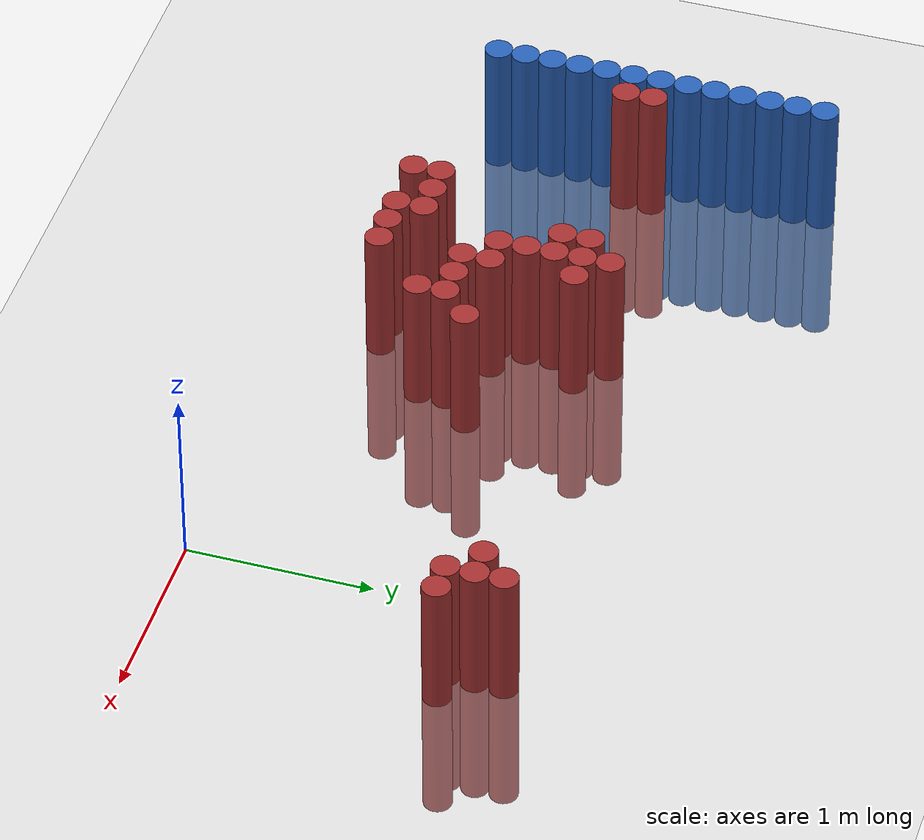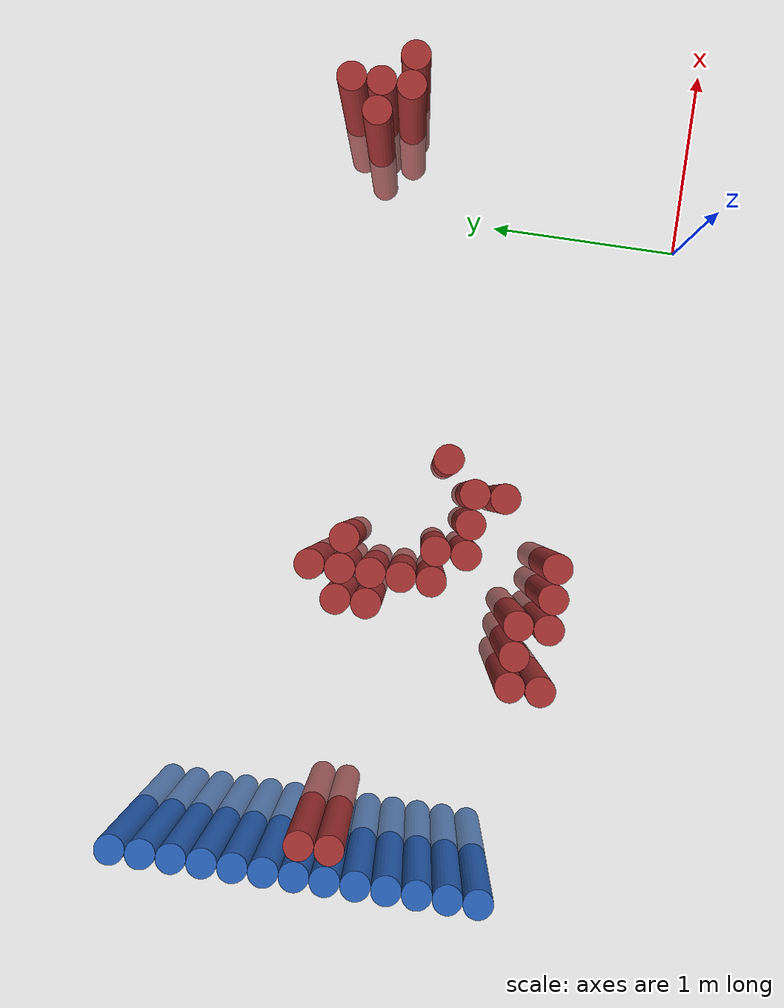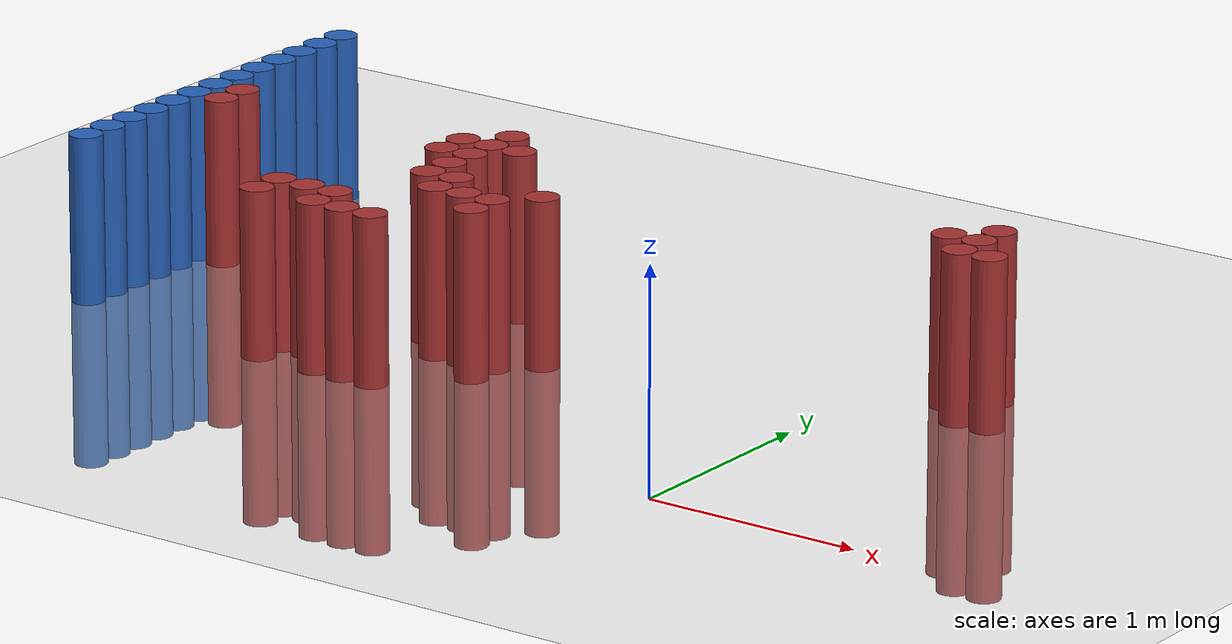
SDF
<sdf version="1.6">
 <world name="default">
  <model name="ground_plane">
   <static>1</static>
   <link name="link">
    <collision name="collision">
     <geometry><plane><normal>0 0 1</normal><size>100 100</size></plane></geometry>
     <surface><friction><ode><mu>100</mu><mu2>50</mu2></ode></friction></surface>
    </collision>
    <visual name="visual">
     <cast_shadows>0</cast_shadows>
     <geometry><plane><normal>0 0 1</normal><size>100 100</size></plane></geometry>
     <material>
      <script><uri>file://media/materials/scripts/gazebo.material</uri><name>Gazebo/Grey</name></script>
     </material>
    </visual>
   </link>
  </model>
  <model name="unit_cylinder_123">
   <static>1</static>
   <pose>-3.425000 0.625000 0.000000 0.000000 0.000000 0.000000</pose>
   <link name="link">
    <inertial>
     <mass>1</mass>
     <inertia><ixx>0.145833</ixx><ixy>0</ixy><ixz>0</ixz><iyy>0.145833</iyy><iyz>0</iyz><izz>0.125</izz></inertia>
    </inertial>
    <collision name="collision">
     <geometry><cylinder><radius>0.075000</radius><length>1.5</length></cylinder></geometry>
    </collision>
    <visual name="visual">
     <geometry><cylinder><radius>0.075000</radius><length>1.5</length></cylinder></geometry>
     <material>
      <ambient>0.152000 0.379000 0.720000 1</ambient>
      <diffuse>0.152000 0.379000 0.720000 1</diffuse>
     </material>
     <material>
      <script><name>Gazebo/Grey</name><uri>file://media/materials/scripts/gazebo.material</uri></script>
     </material>
    </visual>
   </link>
  </model>
  <model name="unit_cylinder_125">
   <static>1</static>
   <pose>-3.425000 0.775000 0.000000 0.000000 0.000000 0.000000</pose>
   <link name="link">
    <inertial>
     <mass>1</mass>
     <inertia><ixx>0.145833</ixx><ixy>0</ixy><ixz>0</ixz><iyy>0.145833</iyy><iyz>0</iyz><izz>0.125</izz></inertia>
    </inertial>
    <collision name="collision">
     <geometry><cylinder><radius>0.075000</radius><length>1.5</length></cylinder></geometry>
    </collision>
    <visual name="visual">
     <geometry><cylinder><radius>0.075000</radius><length>1.5</length></cylinder></geometry>
     <material>
      <ambient>0.152000 0.379000 0.720000 1</ambient>
      <diffuse>0.152000 0.379000 0.720000 1</diffuse>
     </material>
     <material>
      <script><name>Gazebo/Grey</name><uri>file://media/materials/scripts/gazebo.material</uri></script>
     </material>
    </visual>
   </link>
  </model>
  <model name="unit_cylinder_127">
   <static>1</static>
   <pose>-3.425000 0.925000 0.000000 0.000000 0.000000 0.000000</pose>
   <link name="link">
    <inertial>
     <mass>1</mass>
     <inertia><ixx>0.145833</ixx><ixy>0</ixy><ixz>0</ixz><iyy>0.145833</iyy><iyz>0</iyz><izz>0.125</izz></inertia>
    </inertial>
    <collision name="collision">
     <geometry><cylinder><radius>0.075000</radius><length>1.5</length></cylinder></geometry>
    </collision>
    <visual name="visual">
     <geometry><cylinder><radius>0.075000</radius><length>1.5</length></cylinder></geometry>
     <material>
      <ambient>0.152000 0.379000 0.720000 1</ambient>
      <diffuse>0.152000 0.379000 0.720000 1</diffuse>
     </material>
     <material>
      <script><name>Gazebo/Grey</name><uri>file://media/materials/scripts/gazebo.material</uri></script>
     </material>
    </visual>
   </link>
  </model>
  <model name="unit_cylinder_129">
   <static>1</static>
   <pose>-3.425000 1.075000 0.000000 0.000000 0.000000 0.000000</pose>
   <link name="link">
    <inertial>
     <mass>1</mass>
     <inertia><ixx>0.145833</ixx><ixy>0</ixy><ixz>0</ixz><iyy>0.145833</iyy><iyz>0</iyz><izz>0.125</izz></inertia>
    </inertial>
    <collision name="collision">
     <geometry><cylinder><radius>0.075000</radius><length>1.5</length></cylinder></geometry>
    </collision>
    <visual name="visual">
     <geometry><cylinder><radius>0.075000</radius><length>1.5</length></cylinder></geometry>
     <material>
      <ambient>0.152000 0.379000 0.720000 1</ambient>
      <diffuse>0.152000 0.379000 0.720000 1</diffuse>
     </material>
     <material>
      <script><name>Gazebo/Grey</name><uri>file://media/materials/scripts/gazebo.material</uri></script>
     </material>
    </visual>
   </link>
  </model>
  <model name="unit_cylinder_131">
   <static>1</static>
   <pose>-3.425000 1.225000 0.000000 0.000000 0.000000 0.000000</pose>
   <link name="link">
    <inertial>
     <mass>1</mass>
     <inertia><ixx>0.145833</ixx><ixy>0</ixy><ixz>0</ixz><iyy>0.145833</iyy><iyz>0</iyz><izz>0.125</izz></inertia>
    </inertial>
    <collision name="collision">
     <geometry><cylinder><radius>0.075000</radius><length>1.5</length></cylinder></geometry>
    </collision>
    <visual name="visual">
     <geometry><cylinder><radius>0.075000</radius><length>1.5</length></cylinder></geometry>
     <material>
      <ambient>0.152000 0.379000 0.720000 1</ambient>
      <diffuse>0.152000 0.379000 0.720000 1</diffuse>
     </material>
     <material>
      <script><name>Gazebo/Grey</name><uri>file://media/materials/scripts/gazebo.material</uri></script>
     </material>
    </visual>
   </link>
  </model>
  <model name="unit_cylinder_133">
   <static>1</static>
   <pose>-3.425000 1.375000 0.000000 0.000000 0.000000 0.000000</pose>
   <link name="link">
    <inertial>
     <mass>1</mass>
     <inertia><ixx>0.145833</ixx><ixy>0</ixy><ixz>0</ixz><iyy>0.145833</iyy><iyz>0</iyz><izz>0.125</izz></inertia>
    </inertial>
    <collision name="collision">
     <geometry><cylinder><radius>0.075000</radius><length>1.5</length></cylinder></geometry>
    </collision>
    <visual name="visual">
     <geometry><cylinder><radius>0.075000</radius><length>1.5</length></cylinder></geometry>
     <material>
      <ambient>0.152000 0.379000 0.720000 1</ambient>
      <diffuse>0.152000 0.379000 0.720000 1</diffuse>
     </material>
     <material>
      <script><name>Gazebo/Grey</name><uri>file://media/materials/scripts/gazebo.material</uri></script>
     </material>
    </visual>
   </link>
  </model>
  <model name="unit_cylinder_135">
   <static>1</static>
   <pose>-3.425000 1.525000 0.000000 0.000000 0.000000 0.000000</pose>
   <link name="link">
    <inertial>
     <mass>1</mass>
     <inertia><ixx>0.145833</ixx><ixy>0</ixy><ixz>0</ixz><iyy>0.145833</iyy><iyz>0</iyz><izz>0.125</izz></inertia>
    </inertial>
    <collision name="collision">
     <geometry><cylinder><radius>0.075000</radius><length>1.5</length></cylinder></geometry>
    </collision>
    <visual name="visual">
     <geometry><cylinder><radius>0.075000</radius><length>1.5</length></cylinder></geometry>
     <material>
      <ambient>0.152000 0.379000 0.720000 1</ambient>
      <diffuse>0.152000 0.379000 0.720000 1</diffuse>
     </material>
     <material>
      <script><name>Gazebo/Grey</name><uri>file://media/materials/scripts/gazebo.material</uri></script>
     </material>
    </visual>
   </link>
  </model>
  <model name="unit_cylinder_137">
   <static>1</static>
   <pose>-3.425000 1.675000 0.000000 0.000000 0.000000 0.000000</pose>
   <link name="link">
    <inertial>
     <mass>1</mass>
     <inertia><ixx>0.145833</ixx><ixy>0</ixy><ixz>0</ixz><iyy>0.145833</iyy><iyz>0</iyz><izz>0.125</izz></inertia>
    </inertial>
    <collision name="collision">
     <geometry><cylinder><radius>0.075000</radius><length>1.5</length></cylinder></geometry>
    </collision>
    <visual name="visual">
     <geometry><cylinder><radius>0.075000</radius><length>1.5</length></cylinder></geometry>
     <material>
      <ambient>0.152000 0.379000 0.720000 1</ambient>
      <diffuse>0.152000 0.379000 0.720000 1</diffuse>
     </material>
     <material>
      <script><name>Gazebo/Grey</name><uri>file://media/materials/scripts/gazebo.material</uri></script>
     </material>
    </visual>
   </link>
  </model>
  <model name="unit_cylinder_139">
   <static>1</static>
   <pose>-3.425000 1.825000 0.000000 0.000000 0.000000 0.000000</pose>
   <link name="link">
    <inertial>
     <mass>1</mass>
     <inertia><ixx>0.145833</ixx><ixy>0</ixy><ixz>0</ixz><iyy>0.145833</iyy><iyz>0</iyz><izz>0.125</izz></inertia>
    </inertial>
    <collision name="collision">
     <geometry><cylinder><radius>0.075000</radius><length>1.5</length></cylinder></geometry>
    </collision>
    <visual name="visual">
     <geometry><cylinder><radius>0.075000</radius><length>1.5</length></cylinder></geometry>
     <material>
      <ambient>0.152000 0.379000 0.720000 1</ambient>
      <diffuse>0.152000 0.379000 0.720000 1</diffuse>
     </material>
     <material>
      <script><name>Gazebo/Grey</name><uri>file://media/materials/scripts/gazebo.material</uri></script>
     </material>
    </visual>
   </link>
  </model>
  <model name="unit_cylinder_141">
   <static>1</static>
   <pose>-3.425000 1.975000 0.000000 0.000000 0.000000 0.000000</pose>
   <link name="link">
    <inertial>
     <mass>1</mass>
     <inertia><ixx>0.145833</ixx><ixy>0</ixy><ixz>0</ixz><iyy>0.145833</iyy><iyz>0</iyz><izz>0.125</izz></inertia>
    </inertial>
    <collision name="collision">
     <geometry><cylinder><radius>0.075000</radius><length>1.5</length></cylinder></geometry>
    </collision>
    <visual name="visual">
     <geometry><cylinder><radius>0.075000</radius><length>1.5</length></cylinder></geometry>
     <material>
      <ambient>0.152000 0.379000 0.720000 1</ambient>
      <diffuse>0.152000 0.379000 0.720000 1</diffuse>
     </material>
     <material>
      <script><name>Gazebo/Grey</name><uri>file://media/materials/scripts/gazebo.material</uri></script>
     </material>
    </visual>
   </link>
  </model>
  <model name="unit_cylinder_143">
   <static>1</static>
   <pose>-3.425000 2.125000 0.000000 0.000000 0.000000 0.000000</pose>
   <link name="link">
    <inertial>
     <mass>1</mass>
     <inertia><ixx>0.145833</ixx><ixy>0</ixy><ixz>0</ixz><iyy>0.145833</iyy><iyz>0</iyz><izz>0.125</izz></inertia>
    </inertial>
    <collision name="collision">
     <geometry><cylinder><radius>0.075000</radius><length>1.5</length></cylinder></geometry>
    </collision>
    <visual name="visual">
     <geometry><cylinder><radius>0.075000</radius><length>1.5</length></cylinder></geometry>
     <material>
      <ambient>0.152000 0.379000 0.720000 1</ambient>
      <diffuse>0.152000 0.379000 0.720000 1</diffuse>
     </material>
     <material>
      <script><name>Gazebo/Grey</name><uri>file://media/materials/scripts/gazebo.material</uri></script>
     </material>
    </visual>
   </link>
  </model>
  <model name="unit_cylinder_145">
   <static>1</static>
   <pose>-3.425000 2.275000 0.000000 0.000000 0.000000 0.000000</pose>
   <link name="link">
    <inertial>
     <mass>1</mass>
     <inertia><ixx>0.145833</ixx><ixy>0</ixy><ixz>0</ixz><iyy>0.145833</iyy><iyz>0</iyz><izz>0.125</izz></inertia>
    </inertial>
    <collision name="collision">
     <geometry><cylinder><radius>0.075000</radius><length>1.5</length></cylinder></geometry>
    </collision>
    <visual name="visual">
     <geometry><cylinder><radius>0.075000</radius><length>1.5</length></cylinder></geometry>
     <material>
      <ambient>0.152000 0.379000 0.720000 1</ambient>
      <diffuse>0.152000 0.379000 0.720000 1</diffuse>
     </material>
     <material>
      <script><name>Gazebo/Grey</name><uri>file://media/materials/scripts/gazebo.material</uri></script>
     </material>
    </visual>
   </link>
  </model>
  <model name="unit_cylinder_147">
   <static>1</static>
   <pose>-3.425000 2.425000 0.000000 0.000000 0.000000 0.000000</pose>
   <link name="link">
    <inertial>
     <mass>1</mass>
     <inertia><ixx>0.145833</ixx><ixy>0</ixy><ixz>0</ixz><iyy>0.145833</iyy><iyz>0</iyz><izz>0.125</izz></inertia>
    </inertial>
    <collision name="collision">
     <geometry><cylinder><radius>0.075000</radius><length>1.5</length></cylinder></geometry>
    </collision>
    <visual name="visual">
     <geometry><cylinder><radius>0.075000</radius><length>1.5</length></cylinder></geometry>
     <material>
      <ambient>0.152000 0.379000 0.720000 1</ambient>
      <diffuse>0.152000 0.379000 0.720000 1</diffuse>
     </material>
     <material>
      <script><name>Gazebo/Grey</name><uri>file://media/materials/scripts/gazebo.material</uri></script>
     </material>
    </visual>
   </link>
  </model>
  <model name="unit_cylinder_225">
   <static>1</static>
   <pose>-3.425000 0.625000 0.000000 0.000000 0.000000 0.000000</pose>
   <link name="link">
    <inertial>
     <mass>1</mass>
     <inertia><ixx>0.145833</ixx><ixy>0</ixy><ixz>0</ixz><iyy>0.145833</iyy><iyz>0</iyz><izz>0.125</izz></inertia>
    </inertial>
    <collision name="collision">
     <geometry><cylinder><radius>0.075000</radius><length>1.5</length></cylinder></geometry>
    </collision>
    <visual name="visual">
     <geometry><cylinder><radius>0.075000</radius><length>1.5</length></cylinder></geometry>
     <material>
      <ambient>0.152000 0.379000 0.720000 1</ambient>
      <diffuse>0.152000 0.379000 0.720000 1</diffuse>
     </material>
     <material>
      <script><name>Gazebo/Grey</name><uri>file://media/materials/scripts/gazebo.material</uri></script>
     </material>
    </visual>
   </link>
  </model>
  <model name="unit_cylinder_226">
   <static>1</static>
   <pose>-3.425000 0.775000 0.000000 0.000000 0.000000 0.000000</pose>
   <link name="link">
    <inertial>
     <mass>1</mass>
     <inertia><ixx>0.145833</ixx><ixy>0</ixy><ixz>0</ixz><iyy>0.145833</iyy><iyz>0</iyz><izz>0.125</izz></inertia>
    </inertial>
    <collision name="collision">
     <geometry><cylinder><radius>0.075000</radius><length>1.5</length></cylinder></geometry>
    </collision>
    <visual name="visual">
     <geometry><cylinder><radius>0.075000</radius><length>1.5</length></cylinder></geometry>
     <material>
      <ambient>0.152000 0.379000 0.720000 1</ambient>
      <diffuse>0.152000 0.379000 0.720000 1</diffuse>
     </material>
     <material>
      <script><name>Gazebo/Grey</name><uri>file://media/materials/scripts/gazebo.material</uri></script>
     </material>
    </visual>
   </link>
  </model>
  <model name="unit_cylinder_227">
   <static>1</static>
   <pose>-3.425000 0.925000 0.000000 0.000000 0.000000 0.000000</pose>
   <link name="link">
    <inertial>
     <mass>1</mass>
     <inertia><ixx>0.145833</ixx><ixy>0</ixy><ixz>0</ixz><iyy>0.145833</iyy><iyz>0</iyz><izz>0.125</izz></inertia>
    </inertial>
    <collision name="collision">
     <geometry><cylinder><radius>0.075000</radius><length>1.5</length></cylinder></geometry>
    </collision>
    <visual name="visual">
     <geometry><cylinder><radius>0.075000</radius><length>1.5</length></cylinder></geometry>
     <material>
      <ambient>0.152000 0.379000 0.720000 1</ambient>
      <diffuse>0.152000 0.379000 0.720000 1</diffuse>
     </material>
     <material>
      <script><name>Gazebo/Grey</name><uri>file://media/materials/scripts/gazebo.material</uri></script>
     </material>
    </visual>
   </link>
  </model>
  <model name="unit_cylinder_228">
   <static>1</static>
   <pose>-3.425000 1.075000 0.000000 0.000000 0.000000 0.000000</pose>
   <link name="link">
    <inertial>
     <mass>1</mass>
     <inertia><ixx>0.145833</ixx><ixy>0</ixy><ixz>0</ixz><iyy>0.145833</iyy><iyz>0</iyz><izz>0.125</izz></inertia>
    </inertial>
    <collision name="collision">
     <geometry><cylinder><radius>0.075000</radius><length>1.5</length></cylinder></geometry>
    </collision>
    <visual name="visual">
     <geometry><cylinder><radius>0.075000</radius><length>1.5</length></cylinder></geometry>
     <material>
      <ambient>0.152000 0.379000 0.720000 1</ambient>
      <diffuse>0.152000 0.379000 0.720000 1</diffuse>
     </material>
     <material>
      <script><name>Gazebo/Grey</name><uri>file://media/materials/scripts/gazebo.material</uri></script>
     </material>
    </visual>
   </link>
  </model>
  <model name="unit_cylinder_229">
   <static>1</static>
   <pose>-3.425000 1.225000 0.000000 0.000000 0.000000 0.000000</pose>
   <link name="link">
    <inertial>
     <mass>1</mass>
     <inertia><ixx>0.145833</ixx><ixy>0</ixy><ixz>0</ixz><iyy>0.145833</iyy><iyz>0</iyz><izz>0.125</izz></inertia>
    </inertial>
    <collision name="collision">
     <geometry><cylinder><radius>0.075000</radius><length>1.5</length></cylinder></geometry>
    </collision>
    <visual name="visual">
     <geometry><cylinder><radius>0.075000</radius><length>1.5</length></cylinder></geometry>
     <material>
      <ambient>0.152000 0.379000 0.720000 1</ambient>
      <diffuse>0.152000 0.379000 0.720000 1</diffuse>
     </material>
     <material>
      <script><name>Gazebo/Grey</name><uri>file://media/materials/scripts/gazebo.material</uri></script>
     </material>
    </visual>
   </link>
  </model>
  <model name="unit_cylinder_230">
   <static>1</static>
   <pose>-3.425000 1.375000 0.000000 0.000000 0.000000 0.000000</pose>
   <link name="link">
    <inertial>
     <mass>1</mass>
     <inertia><ixx>0.145833</ixx><ixy>0</ixy><ixz>0</ixz><iyy>0.145833</iyy><iyz>0</iyz><izz>0.125</izz></inertia>
    </inertial>
    <collision name="collision">
     <geometry><cylinder><radius>0.075000</radius><length>1.5</length></cylinder></geometry>
    </collision>
    <visual name="visual">
     <geometry><cylinder><radius>0.075000</radius><length>1.5</length></cylinder></geometry>
     <material>
      <ambient>0.152000 0.379000 0.720000 1</ambient>
      <diffuse>0.152000 0.379000 0.720000 1</diffuse>
     </material>
     <material>
      <script><name>Gazebo/Grey</name><uri>file://media/materials/scripts/gazebo.material</uri></script>
     </material>
    </visual>
   </link>
  </model>
  <model name="unit_cylinder_231">
   <static>1</static>
   <pose>-3.425000 1.525000 0.000000 0.000000 0.000000 0.000000</pose>
   <link name="link">
    <inertial>
     <mass>1</mass>
     <inertia><ixx>0.145833</ixx><ixy>0</ixy><ixz>0</ixz><iyy>0.145833</iyy><iyz>0</iyz><izz>0.125</izz></inertia>
    </inertial>
    <collision name="collision">
     <geometry><cylinder><radius>0.075000</radius><length>1.5</length></cylinder></geometry>
    </collision>
    <visual name="visual">
     <geometry><cylinder><radius>0.075000</radius><length>1.5</length></cylinder></geometry>
     <material>
      <ambient>0.152000 0.379000 0.720000 1</ambient>
      <diffuse>0.152000 0.379000 0.720000 1</diffuse>
     </material>
     <material>
      <script><name>Gazebo/Grey</name><uri>file://media/materials/scripts/gazebo.material</uri></script>
     </material>
    </visual>
   </link>
  </model>
  <model name="unit_cylinder_232">
   <static>1</static>
   <pose>-3.425000 1.675000 0.000000 0.000000 0.000000 0.000000</pose>
   <link name="link">
    <inertial>
     <mass>1</mass>
     <inertia><ixx>0.145833</ixx><ixy>0</ixy><ixz>0</ixz><iyy>0.145833</iyy><iyz>0</iyz><izz>0.125</izz></inertia>
    </inertial>
    <collision name="collision">
     <geometry><cylinder><radius>0.075000</radius><length>1.5</length></cylinder></geometry>
    </collision>
    <visual name="visual">
     <geometry><cylinder><radius>0.075000</radius><length>1.5</length></cylinder></geometry>
     <material>
      <ambient>0.152000 0.379000 0.720000 1</ambient>
      <diffuse>0.152000 0.379000 0.720000 1</diffuse>
     </material>
     <material>
      <script><name>Gazebo/Grey</name><uri>file://media/materials/scripts/gazebo.material</uri></script>
     </material>
    </visual>
   </link>
  </model>
  <model name="unit_cylinder_233">
   <static>1</static>
   <pose>-3.425000 1.825000 0.000000 0.000000 0.000000 0.000000</pose>
   <link name="link">
    <inertial>
     <mass>1</mass>
     <inertia><ixx>0.145833</ixx><ixy>0</ixy><ixz>0</ixz><iyy>0.145833</iyy><iyz>0</iyz><izz>0.125</izz></inertia>
    </inertial>
    <collision name="collision">
     <geometry><cylinder><radius>0.075000</radius><length>1.5</length></cylinder></geometry>
    </collision>
    <visual name="visual">
     <geometry><cylinder><radius>0.075000</radius><length>1.5</length></cylinder></geometry>
     <material>
      <ambient>0.152000 0.379000 0.720000 1</ambient>
      <diffuse>0.152000 0.379000 0.720000 1</diffuse>
     </material>
     <material>
      <script><name>Gazebo/Grey</name><uri>file://media/materials/scripts/gazebo.material</uri></script>
     </material>
    </visual>
   </link>
  </model>
  <model name="unit_cylinder_234">
   <static>1</static>
   <pose>-3.425000 1.975000 0.000000 0.000000 0.000000 0.000000</pose>
   <link name="link">
    <inertial>
     <mass>1</mass>
     <inertia><ixx>0.145833</ixx><ixy>0</ixy><ixz>0</ixz><iyy>0.145833</iyy><iyz>0</iyz><izz>0.125</izz></inertia>
    </inertial>
    <collision name="collision">
     <geometry><cylinder><radius>0.075000</radius><length>1.5</length></cylinder></geometry>
    </collision>
    <visual name="visual">
     <geometry><cylinder><radius>0.075000</radius><length>1.5</length></cylinder></geometry>
     <material>
      <ambient>0.152000 0.379000 0.720000 1</ambient>
      <diffuse>0.152000 0.379000 0.720000 1</diffuse>
     </material>
     <material>
      <script><name>Gazebo/Grey</name><uri>file://media/materials/scripts/gazebo.material</uri></script>
     </material>
    </visual>
   </link>
  </model>
  <model name="unit_cylinder_235">
   <static>1</static>
   <pose>-3.425000 2.125000 0.000000 0.000000 0.000000 0.000000</pose>
   <link name="link">
    <inertial>
     <mass>1</mass>
     <inertia><ixx>0.145833</ixx><ixy>0</ixy><ixz>0</ixz><iyy>0.145833</iyy><iyz>0</iyz><izz>0.125</izz></inertia>
    </inertial>
    <collision name="collision">
     <geometry><cylinder><radius>0.075000</radius><length>1.5</length></cylinder></geometry>
    </collision>
    <visual name="visual">
     <geometry><cylinder><radius>0.075000</radius><length>1.5</length></cylinder></geometry>
     <material>
      <ambient>0.152000 0.379000 0.720000 1</ambient>
      <diffuse>0.152000 0.379000 0.720000 1</diffuse>
     </material>
     <material>
      <script><name>Gazebo/Grey</name><uri>file://media/materials/scripts/gazebo.material</uri></script>
     </material>
    </visual>
   </link>
  </model>
  <model name="unit_cylinder_236">
   <static>1</static>
   <pose>-3.425000 2.275000 0.000000 0.000000 0.000000 0.000000</pose>
   <link name="link">
    <inertial>
     <mass>1</mass>
     <inertia><ixx>0.145833</ixx><ixy>0</ixy><ixz>0</ixz><iyy>0.145833</iyy><iyz>0</iyz><izz>0.125</izz></inertia>
    </inertial>
    <collision name="collision">
     <geometry><cylinder><radius>0.075000</radius><length>1.5</length></cylinder></geometry>
    </collision>
    <visual name="visual">
     <geometry><cylinder><radius>0.075000</radius><length>1.5</length></cylinder></geometry>
     <material>
      <ambient>0.152000 0.379000 0.720000 1</ambient>
      <diffuse>0.152000 0.379000 0.720000 1</diffuse>
     </material>
     <material>
      <script><name>Gazebo/Grey</name><uri>file://media/materials/scripts/gazebo.material</uri></script>
     </material>
    </visual>
   </link>
  </model>
  <model name="unit_cylinder_268">
   <static>1</static>
   <pose>-3.275000 1.375000 0.000000 0.000000 0.000000 0.000000</pose>
   <link name="link">
    <inertial>
     <mass>1</mass>
     <inertia><ixx>0.145833</ixx><ixy>0</ixy><ixz>0</ixz><iyy>0.145833</iyy><iyz>0</iyz><izz>0.125</izz></inertia>
    </inertial>
    <collision name="collision">
     <geometry><cylinder><radius>0.075000</radius><length>1.5</length></cylinder></geometry>
    </collision>
    <visual name="visual">
     <geometry><cylinder><radius>0.075000</radius><length>1.5</length></cylinder></geometry>
     <material>
      <ambient>0.648000 0.192000 0.192000 1</ambient>
      <diffuse>0.648000 0.192000 0.192000 1</diffuse>
     </material>
     <material>
      <script><name>Gazebo/Grey</name><uri>file://media/materials/scripts/gazebo.material</uri></script>
     </material>
    </visual>
   </link>
  </model>
  <model name="unit_cylinder_269">
   <static>1</static>
   <pose>-3.275000 1.525000 0.000000 0.000000 0.000000 0.000000</pose>
   <link name="link">
    <inertial>
     <mass>1</mass>
     <inertia><ixx>0.145833</ixx><ixy>0</ixy><ixz>0</ixz><iyy>0.145833</iyy><iyz>0</iyz><izz>0.125</izz></inertia>
    </inertial>
    <collision name="collision">
     <geometry><cylinder><radius>0.075000</radius><length>1.5</length></cylinder></geometry>
    </collision>
    <visual name="visual">
     <geometry><cylinder><radius>0.075000</radius><length>1.5</length></cylinder></geometry>
     <material>
      <ambient>0.648000 0.192000 0.192000 1</ambient>
      <diffuse>0.648000 0.192000 0.192000 1</diffuse>
     </material>
     <material>
      <script><name>Gazebo/Grey</name><uri>file://media/materials/scripts/gazebo.material</uri></script>
     </material>
    </visual>
   </link>
  </model>
  <model name="unit_cylinder_311">
   <static>1</static>
   <pose>-2.375000 0.475000 0.000000 0.000000 0.000000 0.000000</pose>
   <link name="link">
    <inertial>
     <mass>1</mass>
     <inertia><ixx>0.145833</ixx><ixy>0</ixy><ixz>0</ixz><iyy>0.145833</iyy><iyz>0</iyz><izz>0.125</izz></inertia>
    </inertial>
    <collision name="collision">
     <geometry><cylinder><radius>0.075000</radius><length>1.5</length></cylinder></geometry>
    </collision>
    <visual name="visual">
     <geometry><cylinder><radius>0.075000</radius><length>1.5</length></cylinder></geometry>
     <material>
      <ambient>0.648000 0.192000 0.192000 1</ambient>
      <diffuse>0.648000 0.192000 0.192000 1</diffuse>
     </material>
     <material>
      <script><name>Gazebo/Grey</name><uri>file://media/materials/scripts/gazebo.material</uri></script>
     </material>
    </visual>
   </link>
  </model>
  <model name="unit_cylinder_312">
   <static>1</static>
   <pose>-2.375000 0.625000 0.000000 0.000000 0.000000 0.000000</pose>
   <link name="link">
    <inertial>
     <mass>1</mass>
     <inertia><ixx>0.145833</ixx><ixy>0</ixy><ixz>0</ixz><iyy>0.145833</iyy><iyz>0</iyz><izz>0.125</izz></inertia>
    </inertial>
    <collision name="collision">
     <geometry><cylinder><radius>0.075000</radius><length>1.5</length></cylinder></geometry>
    </collision>
    <visual name="visual">
     <geometry><cylinder><radius>0.075000</radius><length>1.5</length></cylinder></geometry>
     <material>
      <ambient>0.648000 0.192000 0.192000 1</ambient>
      <diffuse>0.648000 0.192000 0.192000 1</diffuse>
     </material>
     <material>
      <script><name>Gazebo/Grey</name><uri>file://media/materials/scripts/gazebo.material</uri></script>
     </material>
    </visual>
   </link>
  </model>
  <model name="unit_cylinder_315">
   <static>1</static>
   <pose>-2.225000 0.625000 0.000000 0.000000 0.000000 0.000000</pose>
   <link name="link">
    <inertial>
     <mass>1</mass>
     <inertia><ixx>0.145833</ixx><ixy>0</ixy><ixz>0</ixz><iyy>0.145833</iyy><iyz>0</iyz><izz>0.125</izz></inertia>
    </inertial>
    <collision name="collision">
     <geometry><cylinder><radius>0.075000</radius><length>1.5</length></cylinder></geometry>
    </collision>
    <visual name="visual">
     <geometry><cylinder><radius>0.075000</radius><length>1.5</length></cylinder></geometry>
     <material>
      <ambient>0.648000 0.192000 0.192000 1</ambient>
      <diffuse>0.648000 0.192000 0.192000 1</diffuse>
     </material>
     <material>
      <script><name>Gazebo/Grey</name><uri>file://media/materials/scripts/gazebo.material</uri></script>
     </material>
    </visual>
   </link>
  </model>
  <model name="unit_cylinder_321">
   <static>1</static>
   <pose>-2.075000 0.475000 0.000000 0.000000 0.000000 0.000000</pose>
   <link name="link">
    <inertial>
     <mass>1</mass>
     <inertia><ixx>0.145833</ixx><ixy>0</ixy><ixz>0</ixz><iyy>0.145833</iyy><iyz>0</iyz><izz>0.125</izz></inertia>
    </inertial>
    <collision name="collision">
     <geometry><cylinder><radius>0.075000</radius><length>1.5</length></cylinder></geometry>
    </collision>
    <visual name="visual">
     <geometry><cylinder><radius>0.075000</radius><length>1.5</length></cylinder></geometry>
     <material>
      <ambient>0.648000 0.192000 0.192000 1</ambient>
      <diffuse>0.648000 0.192000 0.192000 1</diffuse>
     </material>
     <material>
      <script><name>Gazebo/Grey</name><uri>file://media/materials/scripts/gazebo.material</uri></script>
     </material>
    </visual>
   </link>
  </model>
  <model name="unit_cylinder_322">
   <static>1</static>
   <pose>-2.075000 0.625000 0.000000 0.000000 0.000000 0.000000</pose>
   <link name="link">
    <inertial>
     <mass>1</mass>
     <inertia><ixx>0.145833</ixx><ixy>0</ixy><ixz>0</ixz><iyy>0.145833</iyy><iyz>0</iyz><izz>0.125</izz></inertia>
    </inertial>
    <collision name="collision">
     <geometry><cylinder><radius>0.075000</radius><length>1.5</length></cylinder></geometry>
    </collision>
    <visual name="visual">
     <geometry><cylinder><radius>0.075000</radius><length>1.5</length></cylinder></geometry>
     <material>
      <ambient>0.648000 0.192000 0.192000 1</ambient>
      <diffuse>0.648000 0.192000 0.192000 1</diffuse>
     </material>
     <material>
      <script><name>Gazebo/Grey</name><uri>file://media/materials/scripts/gazebo.material</uri></script>
     </material>
    </visual>
   </link>
  </model>
  <model name="unit_cylinder_323">
   <static>1</static>
   <pose>-2.075000 1.375000 0.000000 0.000000 0.000000 0.000000</pose>
   <link name="link">
    <inertial>
     <mass>1</mass>
     <inertia><ixx>0.145833</ixx><ixy>0</ixy><ixz>0</ixz><iyy>0.145833</iyy><iyz>0</iyz><izz>0.125</izz></inertia>
    </inertial>
    <collision name="collision">
     <geometry><cylinder><radius>0.075000</radius><length>1.5</length></cylinder></geometry>
    </collision>
    <visual name="visual">
     <geometry><cylinder><radius>0.075000</radius><length>1.5</length></cylinder></geometry>
     <material>
      <ambient>0.648000 0.192000 0.192000 1</ambient>
      <diffuse>0.648000 0.192000 0.192000 1</diffuse>
     </material>
     <material>
      <script><name>Gazebo/Grey</name><uri>file://media/materials/scripts/gazebo.material</uri></script>
     </material>
    </visual>
   </link>
  </model>
  <model name="unit_cylinder_324">
   <static>1</static>
   <pose>-2.075000 1.525000 0.000000 0.000000 0.000000 0.000000</pose>
   <link name="link">
    <inertial>
     <mass>1</mass>
     <inertia><ixx>0.145833</ixx><ixy>0</ixy><ixz>0</ixz><iyy>0.145833</iyy><iyz>0</iyz><izz>0.125</izz></inertia>
    </inertial>
    <collision name="collision">
     <geometry><cylinder><radius>0.075000</radius><length>1.5</length></cylinder></geometry>
    </collision>
    <visual name="visual">
     <geometry><cylinder><radius>0.075000</radius><length>1.5</length></cylinder></geometry>
     <material>
      <ambient>0.648000 0.192000 0.192000 1</ambient>
      <diffuse>0.648000 0.192000 0.192000 1</diffuse>
     </material>
     <material>
      <script><name>Gazebo/Grey</name><uri>file://media/materials/scripts/gazebo.material</uri></script>
     </material>
    </visual>
   </link>
  </model>
  <model name="unit_cylinder_330">
   <static>1</static>
   <pose>-1.925000 0.475000 0.000000 0.000000 0.000000 0.000000</pose>
   <link name="link">
    <inertial>
     <mass>1</mass>
     <inertia><ixx>0.145833</ixx><ixy>0</ixy><ixz>0</ixz><iyy>0.145833</iyy><iyz>0</iyz><izz>0.125</izz></inertia>
    </inertial>
    <collision name="collision">
     <geometry><cylinder><radius>0.075000</radius><length>1.5</length></cylinder></geometry>
    </collision>
    <visual name="visual">
     <geometry><cylinder><radius>0.075000</radius><length>1.5</length></cylinder></geometry>
     <material>
      <ambient>0.648000 0.192000 0.192000 1</ambient>
      <diffuse>0.648000 0.192000 0.192000 1</diffuse>
     </material>
     <material>
      <script><name>Gazebo/Grey</name><uri>file://media/materials/scripts/gazebo.material</uri></script>
     </material>
    </visual>
   </link>
  </model>
  <model name="unit_cylinder_331">
   <static>1</static>
   <pose>-1.925000 1.075000 0.000000 0.000000 0.000000 0.000000</pose>
   <link name="link">
    <inertial>
     <mass>1</mass>
     <inertia><ixx>0.145833</ixx><ixy>0</ixy><ixz>0</ixz><iyy>0.145833</iyy><iyz>0</iyz><izz>0.125</izz></inertia>
    </inertial>
    <collision name="collision">
     <geometry><cylinder><radius>0.075000</radius><length>1.5</length></cylinder></geometry>
    </collision>
    <visual name="visual">
     <geometry><cylinder><radius>0.075000</radius><length>1.5</length></cylinder></geometry>
     <material>
      <ambient>0.648000 0.192000 0.192000 1</ambient>
      <diffuse>0.648000 0.192000 0.192000 1</diffuse>
     </material>
     <material>
      <script><name>Gazebo/Grey</name><uri>file://media/materials/scripts/gazebo.material</uri></script>
     </material>
    </visual>
   </link>
  </model>
  <model name="unit_cylinder_332">
   <static>1</static>
   <pose>-1.925000 1.225000 0.000000 0.000000 0.000000 0.000000</pose>
   <link name="link">
    <inertial>
     <mass>1</mass>
     <inertia><ixx>0.145833</ixx><ixy>0</ixy><ixz>0</ixz><iyy>0.145833</iyy><iyz>0</iyz><izz>0.125</izz></inertia>
    </inertial>
    <collision name="collision">
     <geometry><cylinder><radius>0.075000</radius><length>1.5</length></cylinder></geometry>
    </collision>
    <visual name="visual">
     <geometry><cylinder><radius>0.075000</radius><length>1.5</length></cylinder></geometry>
     <material>
      <ambient>0.648000 0.192000 0.192000 1</ambient>
      <diffuse>0.648000 0.192000 0.192000 1</diffuse>
     </material>
     <material>
      <script><name>Gazebo/Grey</name><uri>file://media/materials/scripts/gazebo.material</uri></script>
     </material>
    </visual>
   </link>
  </model>
  <model name="unit_cylinder_333">
   <static>1</static>
   <pose>-1.925000 1.375000 0.000000 0.000000 0.000000 0.000000</pose>
   <link name="link">
    <inertial>
     <mass>1</mass>
     <inertia><ixx>0.145833</ixx><ixy>0</ixy><ixz>0</ixz><iyy>0.145833</iyy><iyz>0</iyz><izz>0.125</izz></inertia>
    </inertial>
    <collision name="collision">
     <geometry><cylinder><radius>0.075000</radius><length>1.5</length></cylinder></geometry>
    </collision>
    <visual name="visual">
     <geometry><cylinder><radius>0.075000</radius><length>1.5</length></cylinder></geometry>
     <material>
      <ambient>0.648000 0.192000 0.192000 1</ambient>
      <diffuse>0.648000 0.192000 0.192000 1</diffuse>
     </material>
     <material>
      <script><name>Gazebo/Grey</name><uri>file://media/materials/scripts/gazebo.material</uri></script>
     </material>
    </visual>
   </link>
  </model>
  <model name="unit_cylinder_334">
   <static>1</static>
   <pose>-1.925000 1.525000 0.000000 0.000000 0.000000 0.000000</pose>
   <link name="link">
    <inertial>
     <mass>1</mass>
     <inertia><ixx>0.145833</ixx><ixy>0</ixy><ixz>0</ixz><iyy>0.145833</iyy><iyz>0</iyz><izz>0.125</izz></inertia>
    </inertial>
    <collision name="collision">
     <geometry><cylinder><radius>0.075000</radius><length>1.5</length></cylinder></geometry>
    </collision>
    <visual name="visual">
     <geometry><cylinder><radius>0.075000</radius><length>1.5</length></cylinder></geometry>
     <material>
      <ambient>0.648000 0.192000 0.192000 1</ambient>
      <diffuse>0.648000 0.192000 0.192000 1</diffuse>
     </material>
     <material>
      <script><name>Gazebo/Grey</name><uri>file://media/materials/scripts/gazebo.material</uri></script>
     </material>
    </visual>
   </link>
  </model>
  <model name="unit_cylinder_335">
   <static>1</static>
   <pose>-1.925000 1.675000 0.000000 0.000000 0.000000 0.000000</pose>
   <link name="link">
    <inertial>
     <mass>1</mass>
     <inertia><ixx>0.145833</ixx><ixy>0</ixy><ixz>0</ixz><iyy>0.145833</iyy><iyz>0</iyz><izz>0.125</izz></inertia>
    </inertial>
    <collision name="collision">
     <geometry><cylinder><radius>0.075000</radius><length>1.5</length></cylinder></geometry>
    </collision>
    <visual name="visual">
     <geometry><cylinder><radius>0.075000</radius><length>1.5</length></cylinder></geometry>
     <material>
      <ambient>0.648000 0.192000 0.192000 1</ambient>
      <diffuse>0.648000 0.192000 0.192000 1</diffuse>
     </material>
     <material>
      <script><name>Gazebo/Grey</name><uri>file://media/materials/scripts/gazebo.material</uri></script>
     </material>
    </visual>
   </link>
  </model>
  <model name="unit_cylinder_339">
   <static>1</static>
   <pose>-1.775000 0.475000 0.000000 0.000000 0.000000 0.000000</pose>
   <link name="link">
    <inertial>
     <mass>1</mass>
     <inertia><ixx>0.145833</ixx><ixy>0</ixy><ixz>0</ixz><iyy>0.145833</iyy><iyz>0</iyz><izz>0.125</izz></inertia>
    </inertial>
    <collision name="collision">
     <geometry><cylinder><radius>0.075000</radius><length>1.5</length></cylinder></geometry>
    </collision>
    <visual name="visual">
     <geometry><cylinder><radius>0.075000</radius><length>1.5</length></cylinder></geometry>
     <material>
      <ambient>0.648000 0.192000 0.192000 1</ambient>
      <diffuse>0.648000 0.192000 0.192000 1</diffuse>
     </material>
     <material>
      <script><name>Gazebo/Grey</name><uri>file://media/materials/scripts/gazebo.material</uri></script>
     </material>
    </visual>
   </link>
  </model>
  <model name="unit_cylinder_340">
   <static>1</static>
   <pose>-1.775000 0.925000 0.000000 0.000000 0.000000 0.000000</pose>
   <link name="link">
    <inertial>
     <mass>1</mass>
     <inertia><ixx>0.145833</ixx><ixy>0</ixy><ixz>0</ixz><iyy>0.145833</iyy><iyz>0</iyz><izz>0.125</izz></inertia>
    </inertial>
    <collision name="collision">
     <geometry><cylinder><radius>0.075000</radius><length>1.5</length></cylinder></geometry>
    </collision>
    <visual name="visual">
     <geometry><cylinder><radius>0.075000</radius><length>1.5</length></cylinder></geometry>
     <material>
      <ambient>0.648000 0.192000 0.192000 1</ambient>
      <diffuse>0.648000 0.192000 0.192000 1</diffuse>
     </material>
     <material>
      <script><name>Gazebo/Grey</name><uri>file://media/materials/scripts/gazebo.material</uri></script>
     </material>
    </visual>
   </link>
  </model>
  <model name="unit_cylinder_341">
   <static>1</static>
   <pose>-1.775000 1.075000 0.000000 0.000000 0.000000 0.000000</pose>
   <link name="link">
    <inertial>
     <mass>1</mass>
     <inertia><ixx>0.145833</ixx><ixy>0</ixy><ixz>0</ixz><iyy>0.145833</iyy><iyz>0</iyz><izz>0.125</izz></inertia>
    </inertial>
    <collision name="collision">
     <geometry><cylinder><radius>0.075000</radius><length>1.5</length></cylinder></geometry>
    </collision>
    <visual name="visual">
     <geometry><cylinder><radius>0.075000</radius><length>1.5</length></cylinder></geometry>
     <material>
      <ambient>0.648000 0.192000 0.192000 1</ambient>
      <diffuse>0.648000 0.192000 0.192000 1</diffuse>
     </material>
     <material>
      <script><name>Gazebo/Grey</name><uri>file://media/materials/scripts/gazebo.material</uri></script>
     </material>
    </visual>
   </link>
  </model>
  <model name="unit_cylinder_342">
   <static>1</static>
   <pose>-1.775000 1.525000 0.000000 0.000000 0.000000 0.000000</pose>
   <link name="link">
    <inertial>
     <mass>1</mass>
     <inertia><ixx>0.145833</ixx><ixy>0</ixy><ixz>0</ixz><iyy>0.145833</iyy><iyz>0</iyz><izz>0.125</izz></inertia>
    </inertial>
    <collision name="collision">
     <geometry><cylinder><radius>0.075000</radius><length>1.5</length></cylinder></geometry>
    </collision>
    <visual name="visual">
     <geometry><cylinder><radius>0.075000</radius><length>1.5</length></cylinder></geometry>
     <material>
      <ambient>0.648000 0.192000 0.192000 1</ambient>
      <diffuse>0.648000 0.192000 0.192000 1</diffuse>
     </material>
     <material>
      <script><name>Gazebo/Grey</name><uri>file://media/materials/scripts/gazebo.material</uri></script>
     </material>
    </visual>
   </link>
  </model>
  <model name="unit_cylinder_346">
   <static>1</static>
   <pose>-1.625000 0.925000 0.000000 0.000000 0.000000 0.000000</pose>
   <link name="link">
    <inertial>
     <mass>1</mass>
     <inertia><ixx>0.145833</ixx><ixy>0</ixy><ixz>0</ixz><iyy>0.145833</iyy><iyz>0</iyz><izz>0.125</izz></inertia>
    </inertial>
    <collision name="collision">
     <geometry><cylinder><radius>0.075000</radius><length>1.5</length></cylinder></geometry>
    </collision>
    <visual name="visual">
     <geometry><cylinder><radius>0.075000</radius><length>1.5</length></cylinder></geometry>
     <material>
      <ambient>0.648000 0.192000 0.192000 1</ambient>
      <diffuse>0.648000 0.192000 0.192000 1</diffuse>
     </material>
     <material>
      <script><name>Gazebo/Grey</name><uri>file://media/materials/scripts/gazebo.material</uri></script>
     </material>
    </visual>
   </link>
  </model>
  <model name="unit_cylinder_351">
   <static>1</static>
   <pose>-1.475000 0.775000 0.000000 0.000000 0.000000 0.000000</pose>
   <link name="link">
    <inertial>
     <mass>1</mass>
     <inertia><ixx>0.145833</ixx><ixy>0</ixy><ixz>0</ixz><iyy>0.145833</iyy><iyz>0</iyz><izz>0.125</izz></inertia>
    </inertial>
    <collision name="collision">
     <geometry><cylinder><radius>0.075000</radius><length>1.5</length></cylinder></geometry>
    </collision>
    <visual name="visual">
     <geometry><cylinder><radius>0.075000</radius><length>1.5</length></cylinder></geometry>
     <material>
      <ambient>0.648000 0.192000 0.192000 1</ambient>
      <diffuse>0.648000 0.192000 0.192000 1</diffuse>
     </material>
     <material>
      <script><name>Gazebo/Grey</name><uri>file://media/materials/scripts/gazebo.material</uri></script>
     </material>
    </visual>
   </link>
  </model>
  <model name="unit_cylinder_352">
   <static>1</static>
   <pose>-1.475000 0.925000 0.000000 0.000000 0.000000 0.000000</pose>
   <link name="link">
    <inertial>
     <mass>1</mass>
     <inertia><ixx>0.145833</ixx><ixy>0</ixy><ixz>0</ixz><iyy>0.145833</iyy><iyz>0</iyz><izz>0.125</izz></inertia>
    </inertial>
    <collision name="collision">
     <geometry><cylinder><radius>0.075000</radius><length>1.5</length></cylinder></geometry>
    </collision>
    <visual name="visual">
     <geometry><cylinder><radius>0.075000</radius><length>1.5</length></cylinder></geometry>
     <material>
      <ambient>0.648000 0.192000 0.192000 1</ambient>
      <diffuse>0.648000 0.192000 0.192000 1</diffuse>
     </material>
     <material>
      <script><name>Gazebo/Grey</name><uri>file://media/materials/scripts/gazebo.material</uri></script>
     </material>
    </visual>
   </link>
  </model>
  <model name="unit_cylinder_357">
   <static>1</static>
   <pose>-1.325000 1.075000 0.000000 0.000000 0.000000 0.000000</pose>
   <link name="link">
    <inertial>
     <mass>1</mass>
     <inertia><ixx>0.145833</ixx><ixy>0</ixy><ixz>0</ixz><iyy>0.145833</iyy><iyz>0</iyz><izz>0.125</izz></inertia>
    </inertial>
    <collision name="collision">
     <geometry><cylinder><radius>0.075000</radius><length>1.5</length></cylinder></geometry>
    </collision>
    <visual name="visual">
     <geometry><cylinder><radius>0.075000</radius><length>1.5</length></cylinder></geometry>
     <material>
      <ambient>0.648000 0.192000 0.192000 1</ambient>
      <diffuse>0.648000 0.192000 0.192000 1</diffuse>
     </material>
     <material>
      <script><name>Gazebo/Grey</name><uri>file://media/materials/scripts/gazebo.material</uri></script>
     </material>
    </visual>
   </link>
  </model>
  <model name="unit_cylinder_399">
   <static>1</static>
   <pose>0.325000 1.675000 0.000000 0.000000 0.000000 0.000000</pose>
   <link name="link">
    <inertial>
     <mass>1</mass>
     <inertia><ixx>0.145833</ixx><ixy>0</ixy><ixz>0</ixz><iyy>0.145833</iyy><iyz>0</iyz><izz>0.125</izz></inertia>
    </inertial>
    <collision name="collision">
     <geometry><cylinder><radius>0.075000</radius><length>1.5</length></cylinder></geometry>
    </collision>
    <visual name="visual">
     <geometry><cylinder><radius>0.075000</radius><length>1.5</length></cylinder></geometry>
     <material>
      <ambient>0.648000 0.192000 0.192000 1</ambient>
      <diffuse>0.648000 0.192000 0.192000 1</diffuse>
     </material>
     <material>
      <script><name>Gazebo/Grey</name><uri>file://media/materials/scripts/gazebo.material</uri></script>
     </material>
    </visual>
   </link>
  </model>
  <model name="unit_cylinder_404">
   <static>1</static>
   <pose>0.475000 1.525000 0.000000 0.000000 0.000000 0.000000</pose>
   <link name="link">
    <inertial>
     <mass>1</mass>
     <inertia><ixx>0.145833</ixx><ixy>0</ixy><ixz>0</ixz><iyy>0.145833</iyy><iyz>0</iyz><izz>0.125</izz></inertia>
    </inertial>
    <collision name="collision">
     <geometry><cylinder><radius>0.075000</radius><length>1.5</length></cylinder></geometry>
    </collision>
    <visual name="visual">
     <geometry><cylinder><radius>0.075000</radius><length>1.5</length></cylinder></geometry>
     <material>
      <ambient>0.648000 0.192000 0.192000 1</ambient>
      <diffuse>0.648000 0.192000 0.192000 1</diffuse>
     </material>
     <material>
      <script><name>Gazebo/Grey</name><uri>file://media/materials/scripts/gazebo.material</uri></script>
     </material>
    </visual>
   </link>
  </model>
  <model name="unit_cylinder_405">
   <static>1</static>
   <pose>0.475000 1.675000 0.000000 0.000000 0.000000 0.000000</pose>
   <link name="link">
    <inertial>
     <mass>1</mass>
     <inertia><ixx>0.145833</ixx><ixy>0</ixy><ixz>0</ixz><iyy>0.145833</iyy><iyz>0</iyz><izz>0.125</izz></inertia>
    </inertial>
    <collision name="collision">
     <geometry><cylinder><radius>0.075000</radius><length>1.5</length></cylinder></geometry>
    </collision>
    <visual name="visual">
     <geometry><cylinder><radius>0.075000</radius><length>1.5</length></cylinder></geometry>
     <material>
      <ambient>0.648000 0.192000 0.192000 1</ambient>
      <diffuse>0.648000 0.192000 0.192000 1</diffuse>
     </material>
     <material>
      <script><name>Gazebo/Grey</name><uri>file://media/materials/scripts/gazebo.material</uri></script>
     </material>
    </visual>
   </link>
  </model>
  <model name="unit_cylinder_406">
   <static>1</static>
   <pose>0.475000 1.825000 0.000000 0.000000 0.000000 0.000000</pose>
   <link name="link">
    <inertial>
     <mass>1</mass>
     <inertia><ixx>0.145833</ixx><ixy>0</ixy><ixz>0</ixz><iyy>0.145833</iyy><iyz>0</iyz><izz>0.125</izz></inertia>
    </inertial>
    <collision name="collision">
     <geometry><cylinder><radius>0.075000</radius><length>1.5</length></cylinder></geometry>
    </collision>
    <visual name="visual">
     <geometry><cylinder><radius>0.075000</radius><length>1.5</length></cylinder></geometry>
     <material>
      <ambient>0.648000 0.192000 0.192000 1</ambient>
      <diffuse>0.648000 0.192000 0.192000 1</diffuse>
     </material>
     <material>
      <script><name>Gazebo/Grey</name><uri>file://media/materials/scripts/gazebo.material</uri></script>
     </material>
    </visual>
   </link>
  </model>
  <model name="unit_cylinder_413">
   <static>1</static>
   <pose>0.625000 1.525000 0.000000 0.000000 0.000000 0.000000</pose>
   <link name="link">
    <inertial>
     <mass>1</mass>
     <inertia><ixx>0.145833</ixx><ixy>0</ixy><ixz>0</ixz><iyy>0.145833</iyy><iyz>0</iyz><izz>0.125</izz></inertia>
    </inertial>
    <collision name="collision">
     <geometry><cylinder><radius>0.075000</radius><length>1.5</length></cylinder></geometry>
    </collision>
    <visual name="visual">
     <geometry><cylinder><radius>0.075000</radius><length>1.5</length></cylinder></geometry>
     <material>
      <ambient>0.648000 0.192000 0.192000 1</ambient>
      <diffuse>0.648000 0.192000 0.192000 1</diffuse>
     </material>
     <material>
      <script><name>Gazebo/Grey</name><uri>file://media/materials/scripts/gazebo.material</uri></script>
     </material>
    </visual>
   </link>
  </model>
 </world>
</sdf>
